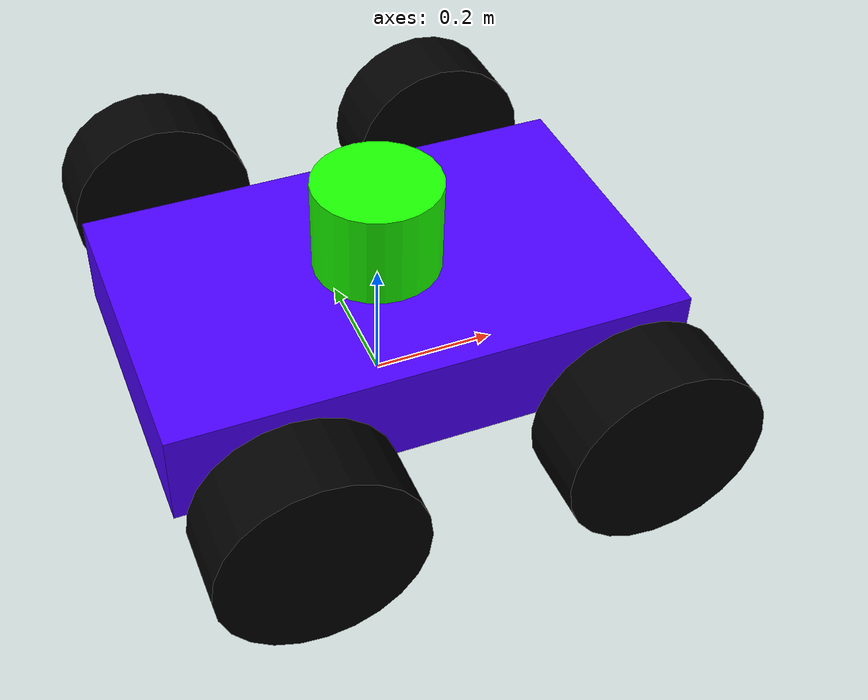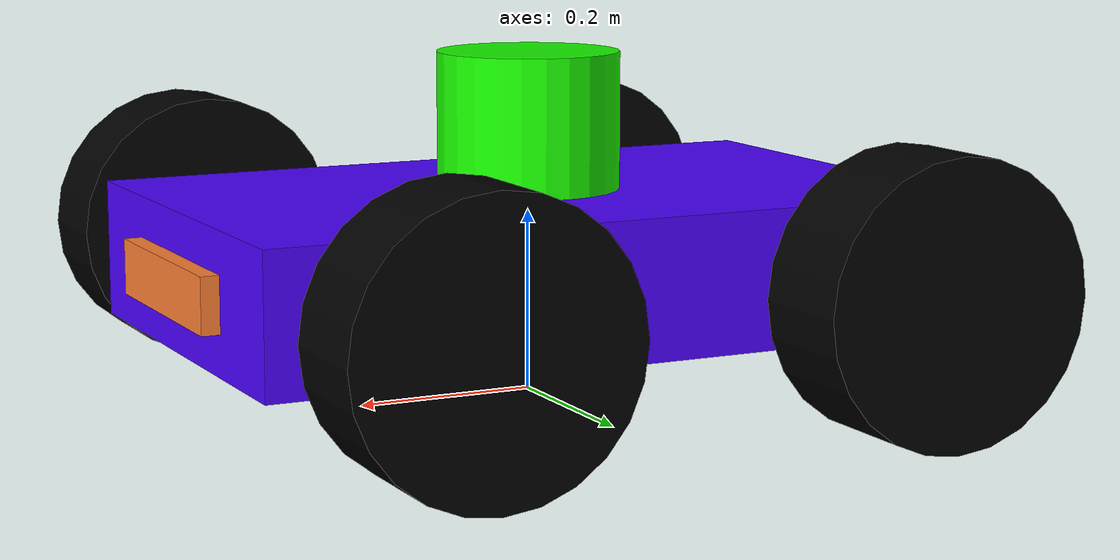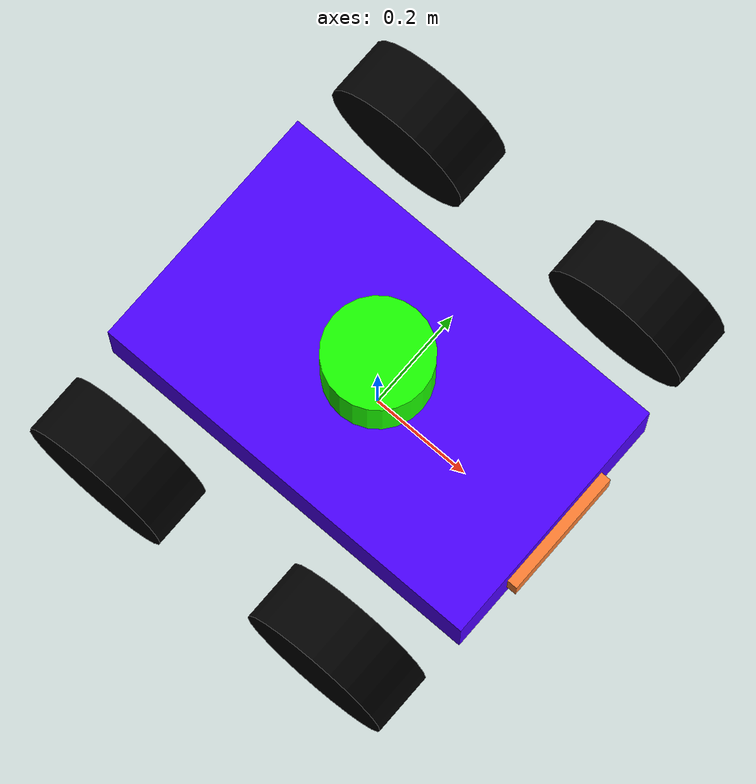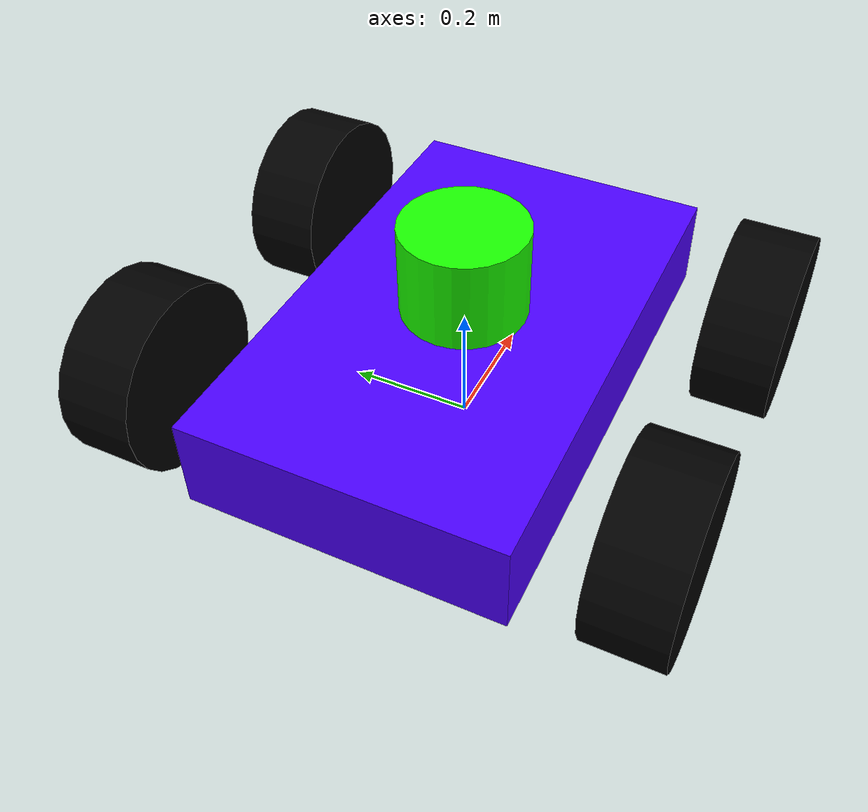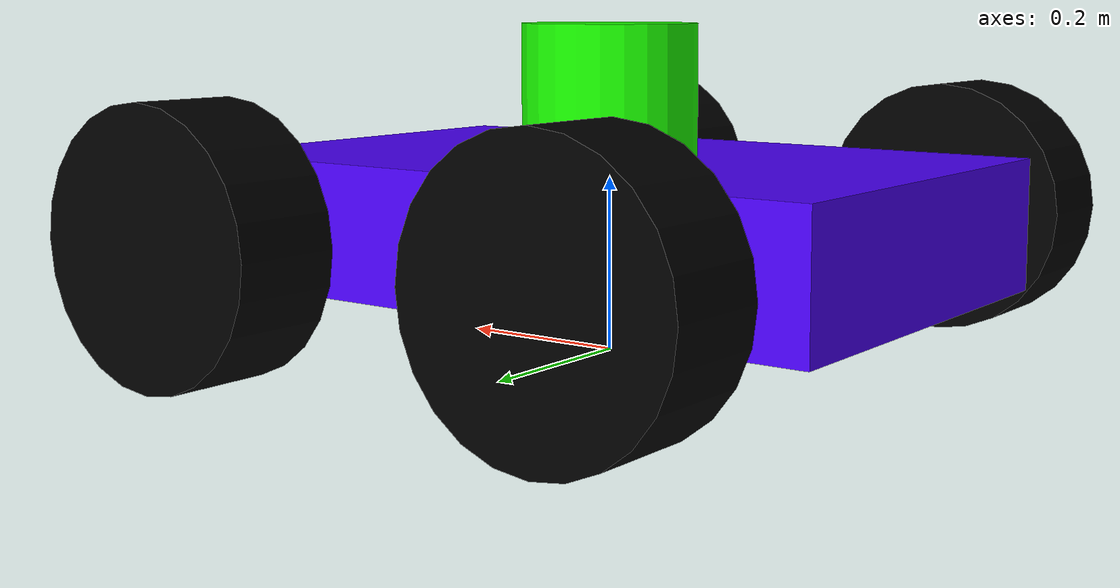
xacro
<?xml version="1.0" encoding="UTF-8"?>

<robot xmlns:xacro="http://www.ros.org/wiki/xacro" name="parcbot">

    <xacro:include filename="tyres.xacro"/>
    <xacro:include filename="gazebo.xacro"/>

    <material name="red">
        <color rgba="1.0 0.0 0.0 1.0"/>
    </material>
    <material name="white">
        <color rgba="1.0 1.0 1.0 1.0"/>
    </material>
    <material name="blue">
        <color rgba="0.3 0.0 1.0 1.0"/>
    </material>
    <material name="green">
        <color rgba="0.1 1.0 0.0 1.0"/>
    </material>

    <link name="base_link">
        <visual>
            <origin xyz="0.0 0.0 0.15" rpy="0.0 0.0 0.0"/>
            <geometry>
                <box size="0.8 0.5 0.15"/>
            </geometry>
            <material name="blue"/>
        </visual>

        <collision>
            <origin xyz="0.0 0.0 0.15" rpy="0.0 0.0 0.0"/>
            <geometry>
                <box size="0.8 0.5 0.15"/>
            </geometry>
        </collision>

        <inertial>
            <origin xyz="0.0 0.0 0.05" rpy="0.0 0.0 0.0"/>
            <mass value="12.0"/>
            <inertia ixx="2.26" ixy="0.0" ixz="0.0" iyy="6.26" iyz="0.0" izz="8.5"/>
        </inertial>
    </link>

    <joint name="lidar_joint" type="fixed">
        <origin xyz="0.0 0.0 0.225" rpy="0.0 0.0 0.0"/>
        <parent link="base_link"/>
        <child link="lidar_link"/>
        <axis xyz="0.0 0.0 0.0"/>
    </joint>

    <link name="lidar_link">
        <inertial>
            <origin xyz="0.0 0.0 0.0" rpy="0.0 0.0 0.0"/>
            <mass value="0.0"/>
            <inertia ixx="0.0" ixy="0.0" ixz="0.0" iyy="0.0" iyz="0.0" izz="0.0"/>
        </inertial>
        <visual>
            <origin xyz="0.0 0.0 0.075" rpy="0.0 0.0 0.0"/>
            <geometry>
                <cylinder radius="0.1" length="0.15"/>
            </geometry>
            <material name="green" />
        </visual>
        <collision>
            <origin xyz="0.0 0.0 0.0" rpy="0.0 0.0 0.0"/>
            <geometry>
                <box size="0.0 0.0 0.0"/>
            </geometry>
        </collision>
    </link>

    <!-- camera -->
    <joint name='camera_joint' type='fixed'>
        <origin xyz="0.41 0.0 0.15" />
        <parent link="base_link" />
        <child link="camera_link" />
    </joint>

    <link name="camera_link">
        <visual name="camera_visual">
            <origin xyz="0.0 0.0 0.0" />
            <geometry>
                <box size="0.02 0.25 0.06"/>
            </geometry>
            <material name="orange1">
                <color rgba="1.0 0.5 0.2 1.0" />
            </material>
        </visual>
        <collision>
            <origin xyz="0.0 0.0 0.0" />
            <geometry>
               <box size="0.02 0.25 0.06"/>
            </geometry>
        </collision>
    </link>

    <joint name='camera_optical_joint' type='fixed'>
        <origin xyz="0.0 0.0 0.0" rpy="0 0 0"/>
        <parent link="camera_link" />
        <child link="camera_link_optical" />
    </joint>

    <link name="camera_link_optical"/>

    <!-- Adding the tyres via xacro -->
     <!-- TOP RIGHT -->
    <xacro:steering_tyre name="tyre1" parent_link="base_link" origin="0.25 0.4 0.15" rotate="${-pi/2} 0.0 0.0" axis="1"/>
    <!-- TOP LEFT -->
    <xacro:steering_tyre name="tyre2" parent_link="base_link" origin="0.25 -0.4 0.15" rotate="${-pi/2} 0.0 0" axis="1"/>
    <!-- BOTTOM RIGHT -->
    <xacro:tyre name="tyre3" parent_link="base_link" origin="-0.25 0.4 0.15" rotate="${-pi/2} 0.0 0" axis="1"/>
    <!-- BOTTOM LEFT -->
    <xacro:tyre name="tyre4" parent_link="base_link" origin="-0.25 -0.4 0.15" rotate="${-pi/2} 0.0 0" axis="1"/>

</robot>

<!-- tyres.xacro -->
<robot xmlns:xacro="http://www.ros.org/wiki/xacro" name="robot_name">

    <xacro:property name="mass" value="0.1" />
    <xacro:property name="radius" value="0.15" />
    <xacro:property name="length" value="0.12" />

    <xacro:macro name="tyre" params="name parent_link origin rotate axis">

        <!-- The joints for the tyre -->
        <joint name="${name}_joint" type="continuous">
            <origin xyz="${origin}" rpy="${rotate}"/>
            <axis xyz="0 0 ${axis}" />
            <parent link="${parent_link}" />
            <child link="${name}" />
        </joint>

        <link name="${name}">
            <visual name="tyre_visual">
                <origin xyz="0.0 0.0 0.0" />
                <geometry>
                    <cylinder radius="${radius}" length="${length}"/>
                </geometry>
                <material name="black">
                    <color rgba="0.0 0.0 0.0 1.0" />
                </material>
            </visual>

            <collision>
                <origin xyz="0.0 0.0 0.0" />
                <geometry>
                    <cylinder radius="${radius}" length="${length}"/>
                </geometry>
            </collision>

            <inertial>
                <origin xyz="0.0 0.0 0.0" rpy="0.0 0.0 0.0" />
                <mass value="${mass}" />
                <inertia
                    ixx="${(1/12) * mass * (3*radius*radius + length*length)}"
                    iyy="${(1/12) * mass * (3*radius*radius + length*length)}"
                    izz="${(1/2) * mass * (radius*radius)}"
                    ixy="0.0" ixz="0.0" iyz="0.0" />
            </inertial>

        </link>
    </xacro:macro>

    <xacro:macro name="steering_tyre" params="name parent_link origin rotate axis">
        <link name="${name}_steer_link">
            <inertial>
                <mass value="0.01"/>
                <inertia ixx="0.001" ixy="0.0" ixz="0.0" iyy="0.001" iyz="0.0" izz="0.001"/>
            </inertial>
        </link>

        <joint name="${name}_steer_joint" type="revolute">
            <parent link="${parent_link}"/>
            <child link="${name}_steer_link"/>
            <origin xyz="${origin}" rpy="0 0 0"/>
            <axis xyz="0 0 1"/> <limit lower="-0.5" upper="0.5" effort="10.0" velocity="1.0"/>
        </joint>

        <joint name="${name}_joint" type="continuous">
            <origin xyz="0 0 0" rpy="${rotate}"/>
            <axis xyz="0 0 ${axis}" />
            <parent link="${name}_steer_link" />
            <child link="${name}" />
        </joint>

        <link name="${name}">
            <visual>
                <geometry>
                    <cylinder radius="${radius}" length="${length}"/>
                </geometry>
                <material name="black"><color rgba="0 0 0 1"/></material>
            </visual>
            <collision>
                <geometry>
                   <cylinder radius="${radius}" length="${length}"/>
                </geometry>
            </collision>
            <inertial>
                <mass value="0.1" />
                <inertia ixx="0.0001" iyy="0.0001" izz="0.0001" ixy="0" ixz="0" iyz="0" />
            </inertial>
        </link>
    </xacro:macro>
</robot>
